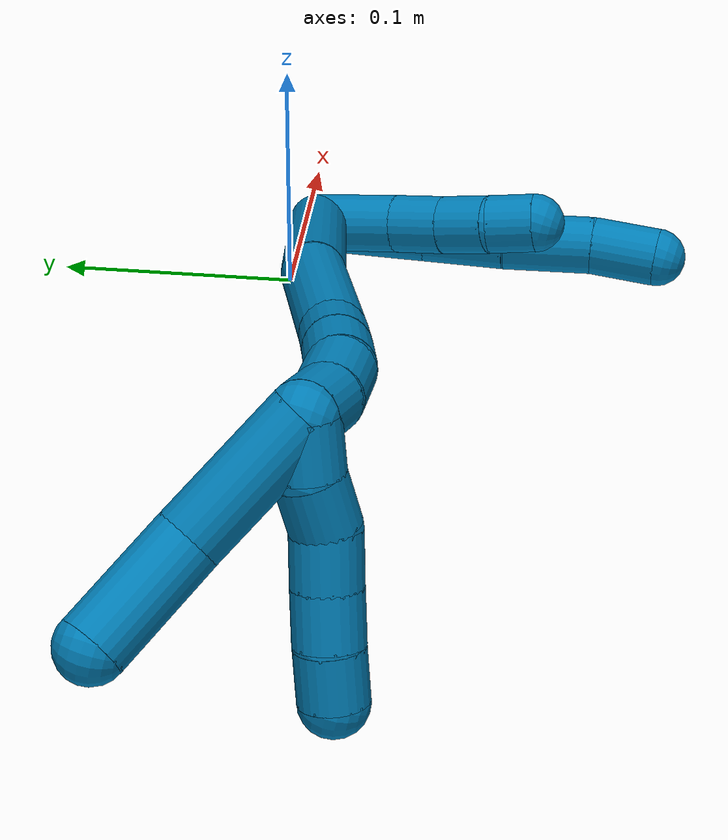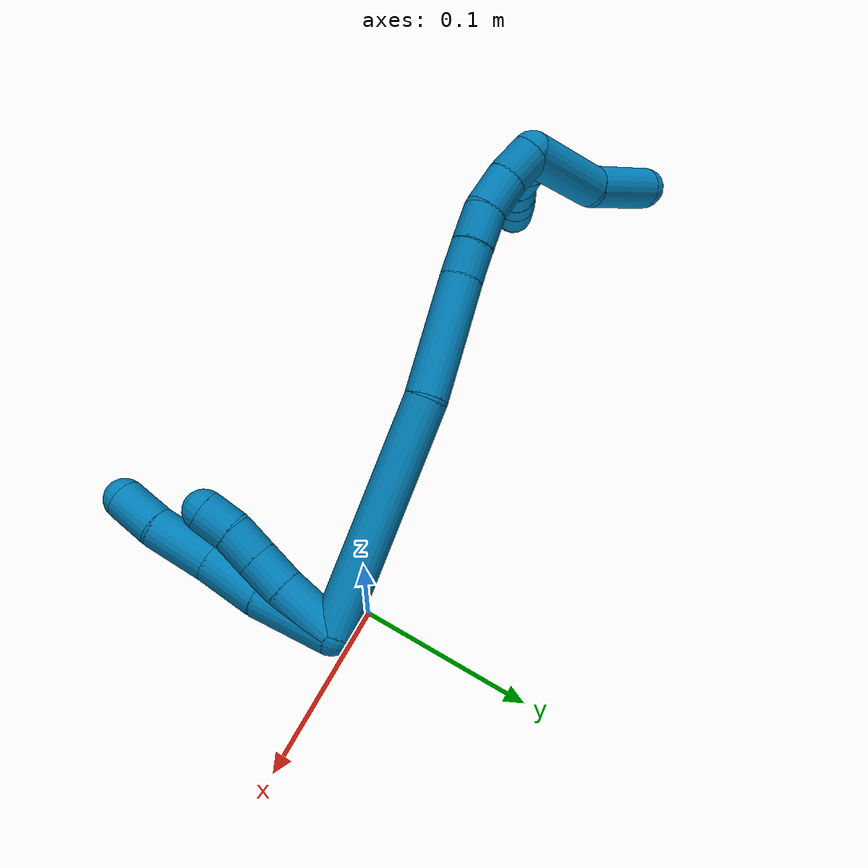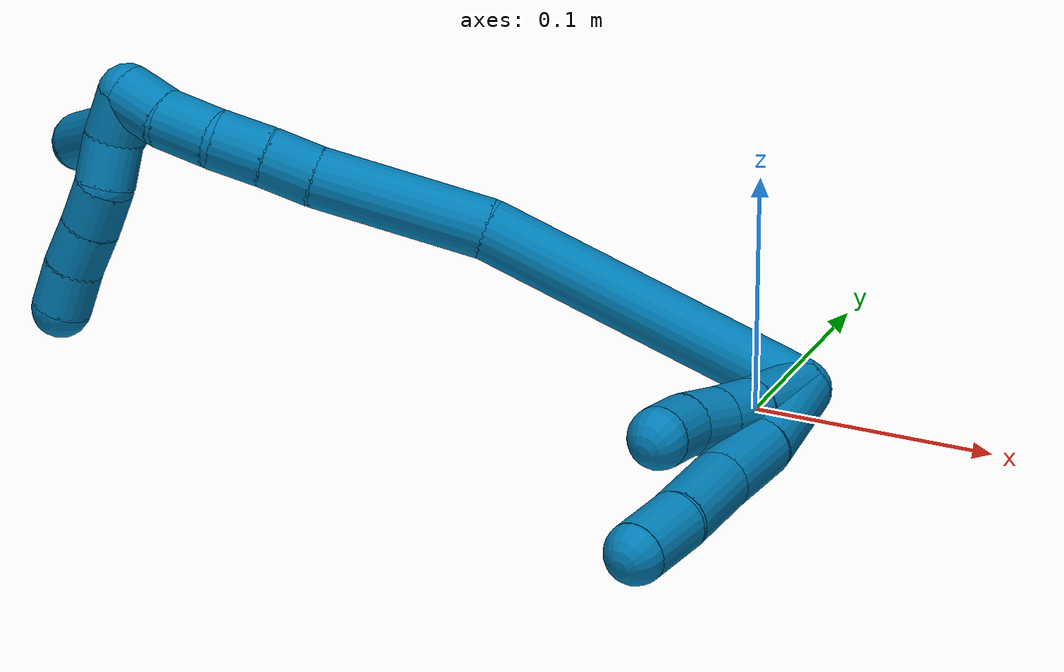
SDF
<sdf version="1.7">
 <world name="default">
  <model name="9">
   <static>0</static>
   <link name="9">
    <collision name="collision-cylinder-e_1_2_8">
     <pose>0.005737 0.000373 0.023066 -0.01615 0.243743 -0.001978</pose>
     <geometry><cylinder><radius>0.0125</radius><length>0.047544</length></cylinder></geometry>
     <surface>
      <friction><ode><mu>1.16</mu><mu2>1.16</mu2><slip1>0</slip1><slip2>0</slip2></ode></friction>
      <contact><ode><kp>1e+06</kp><kd>1</kd><max_vel>0</max_vel><min_depth>0.001</min_depth></ode></contact>
     </surface>
    </collision>
    <visual name="visual-cylinder-e_1_2_8">
     <pose>0.005737 0.000373 0.023066 -0.01615 0.243743 -0.001978</pose>
     <geometry><cylinder><radius>0.0125</radius><length>0.047544</length></cylinder></geometry>
     <material><ambient>0 0.490196 0.709804 1</ambient></material>
    </visual>
    <collision name="collision-cylinder-e_2_8_9">
     <pose>0.014166 0.003258 0.063463 -0.143989 0.152526 -0.011021</pose>
     <geometry><cylinder><radius>0.0125</radius><length>0.035435</length></cylinder></geometry>
     <surface>
      <friction><ode><mu>1.16</mu><mu2>1.16</mu2><slip1>0</slip1><slip2>0</slip2></ode></friction>
      <contact><ode><kp>1e+06</kp><kd>1</kd><max_vel>0</max_vel><min_depth>0.001</min_depth></ode></contact>
     </surface>
    </collision>
    <visual name="visual-cylinder-e_2_8_9">
     <pose>0.014166 0.003258 0.063463 -0.143989 0.152526 -0.011021</pose>
     <geometry><cylinder><radius>0.0125</radius><length>0.035435</length></cylinder></geometry>
     <material><ambient>0 0.490196 0.709804 1</ambient></material>
    </visual>
    <collision name="collision-cylinder-e_3_9_10">
     <pose>0.020955 0.008379 0.099503 -0.138513 0.213581 -0.014872</pose>
     <geometry><cylinder><radius>0.0125</radius><length>0.038659</length></cylinder></geometry>
     <surface>
      <friction><ode><mu>1.16</mu><mu2>1.16</mu2><slip1>0</slip1><slip2>0</slip2></ode></friction>
      <contact><ode><kp>1e+06</kp><kd>1</kd><max_vel>0</max_vel><min_depth>0.001</min_depth></ode></contact>
     </surface>
    </collision>
    <visual name="visual-cylinder-e_3_9_10">
     <pose>0.020955 0.008379 0.099503 -0.138513 0.213581 -0.014872</pose>
     <geometry><cylinder><radius>0.0125</radius><length>0.038659</length></cylinder></geometry>
     <material><ambient>0 0.490196 0.709804 1</ambient></material>
    </visual>
    <collision name="collision-cylinder-e_4_10_6">
     <pose>0.025842 0.012832 0.132251 -0.130682 0.055753 -0.003649</pose>
     <geometry><cylinder><radius>0.0125</radius><length>0.028363</length></cylinder></geometry>
     <surface>
      <friction><ode><mu>1.16</mu><mu2>1.16</mu2><slip1>0</slip1><slip2>0</slip2></ode></friction>
      <contact><ode><kp>1e+06</kp><kd>1</kd><max_vel>0</max_vel><min_depth>0.001</min_depth></ode></contact>
     </surface>
    </collision>
    <visual name="visual-cylinder-e_4_10_6">
     <pose>0.025842 0.012832 0.132251 -0.130682 0.055753 -0.003649</pose>
     <geometry><cylinder><radius>0.0125</radius><length>0.028363</length></cylinder></geometry>
     <material><ambient>0 0.490196 0.709804 1</ambient></material>
    </visual>
    <collision name="collision-cylinder-e_1_2_11">
     <pose>0.002067 0.005796 0.01731 -0.32311 0.112727 -0.018391</pose>
     <geometry><cylinder><radius>0.0125</radius><length>0.036742</length></cylinder></geometry>
     <surface>
      <friction><ode><mu>1.16</mu><mu2>1.16</mu2><slip1>0</slip1><slip2>0</slip2></ode></friction>
      <contact><ode><kp>1e+06</kp><kd>1</kd><max_vel>0</max_vel><min_depth>0.001</min_depth></ode></contact>
     </surface>
    </collision>
    <visual name="visual-cylinder-e_1_2_11">
     <pose>0.002067 0.005796 0.01731 -0.32311 0.112727 -0.018391</pose>
     <geometry><cylinder><radius>0.0125</radius><length>0.036742</length></cylinder></geometry>
     <material><ambient>0 0.490196 0.709804 1</ambient></material>
    </visual>
    <collision name="collision-cylinder-e_2_11_12">
     <pose>0.004646 0.015744 0.04492 -0.383156 0.046122 -0.008947</pose>
     <geometry><cylinder><radius>0.0125</radius><length>0.022234</length></cylinder></geometry>
     <surface>
      <friction><ode><mu>1.16</mu><mu2>1.16</mu2><slip1>0</slip1><slip2>0</slip2></ode></friction>
      <contact><ode><kp>1e+06</kp><kd>1</kd><max_vel>0</max_vel><min_depth>0.001</min_depth></ode></contact>
     </surface>
    </collision>
    <visual name="visual-cylinder-e_2_11_12">
     <pose>0.004646 0.015744 0.04492 -0.383156 0.046122 -0.008947</pose>
     <geometry><cylinder><radius>0.0125</radius><length>0.022234</length></cylinder></geometry>
     <material><ambient>0 0.490196 0.709804 1</ambient></material>
    </visual>
    <collision name="collision-cylinder-e_3_12_13">
     <pose>0.005858 0.024174 0.064714 -0.423408 0.067091 -0.014425</pose>
     <geometry><cylinder><radius>0.0125</radius><length>0.020876</length></cylinder></geometry>
     <surface>
      <friction><ode><mu>1.16</mu><mu2>1.16</mu2><slip1>0</slip1><slip2>0</slip2></ode></friction>
      <contact><ode><kp>1e+06</kp><kd>1</kd><max_vel>0</max_vel><min_depth>0.001</min_depth></ode></contact>
     </surface>
    </collision>
    <visual name="visual-cylinder-e_3_12_13">
     <pose>0.005858 0.024174 0.064714 -0.423408 0.067091 -0.014425</pose>
     <geometry><cylinder><radius>0.0125</radius><length>0.020876</length></cylinder></geometry>
     <material><ambient>0 0.490196 0.709804 1</ambient></material>
    </visual>
    <collision name="collision-cylinder-e_4_13_5">
     <pose>0.008627 0.031234 0.083668 -0.285942 0.206849 -0.029881</pose>
     <geometry><cylinder><radius>0.0125</radius><length>0.020148</length></cylinder></geometry>
     <surface>
      <friction><ode><mu>1.16</mu><mu2>1.16</mu2><slip1>0</slip1><slip2>0</slip2></ode></friction>
      <contact><ode><kp>1e+06</kp><kd>1</kd><max_vel>0</max_vel><min_depth>0.001</min_depth></ode></contact>
     </surface>
    </collision>
    <visual name="visual-cylinder-e_4_13_5">
     <pose>0.008627 0.031234 0.083668 -0.285942 0.206849 -0.029881</pose>
     <geometry><cylinder><radius>0.0125</radius><length>0.020148</length></cylinder></geometry>
     <material><ambient>0 0.490196 0.709804 1</ambient></material>
    </visual>
    <collision name="collision-cylinder-e_1_2_14">
     <pose>-0.046201 0.050707 0.012803 -1.32347 -0.723568 0.573292</pose>
     <geometry><cylinder><radius>0.0125</radius><length>0.139566</length></cylinder></geometry>
     <surface>
      <friction><ode><mu>1.16</mu><mu2>1.16</mu2><slip1>0</slip1><slip2>0</slip2></ode></friction>
      <contact><ode><kp>1e+06</kp><kd>1</kd><max_vel>0</max_vel><min_depth>0.001</min_depth></ode></contact>
     </surface>
    </collision>
    <visual name="visual-cylinder-e_1_2_14">
     <pose>-0.046201 0.050707 0.012803 -1.32347 -0.723568 0.573292</pose>
     <geometry><cylinder><radius>0.0125</radius><length>0.139566</length></cylinder></geometry>
     <material><ambient>0 0.490196 0.709804 1</ambient></material>
    </visual>
    <collision name="collision-cylinder-e_2_14_15">
     <pose>-0.117896 0.123979 0.037347 -1.09103 -0.786551 0.493375</pose>
     <geometry><cylinder><radius>0.0125</radius><length>0.072027</length></cylinder></geometry>
     <surface>
      <friction><ode><mu>1.16</mu><mu2>1.16</mu2><slip1>0</slip1><slip2>0</slip2></ode></friction>
      <contact><ode><kp>1e+06</kp><kd>1</kd><max_vel>0</max_vel><min_depth>0.001</min_depth></ode></contact>
     </surface>
    </collision>
    <visual name="visual-cylinder-e_2_14_15">
     <pose>-0.117896 0.123979 0.037347 -1.09103 -0.786551 0.493375</pose>
     <geometry><cylinder><radius>0.0125</radius><length>0.072027</length></cylinder></geometry>
     <material><ambient>0 0.490196 0.709804 1</ambient></material>
    </visual>
    <collision name="collision-cylinder-e_3_15_16">
     <pose>-0.150607 0.153748 0.051913 -1.1971 -0.750422 0.524856</pose>
     <geometry><cylinder><radius>0.0125</radius><length>0.021163</length></cylinder></geometry>
     <surface>
      <friction><ode><mu>1.16</mu><mu2>1.16</mu2><slip1>0</slip1><slip2>0</slip2></ode></friction>
      <contact><ode><kp>1e+06</kp><kd>1</kd><max_vel>0</max_vel><min_depth>0.001</min_depth></ode></contact>
     </surface>
    </collision>
    <visual name="visual-cylinder-e_3_15_16">
     <pose>-0.150607 0.153748 0.051913 -1.1971 -0.750422 0.524856</pose>
     <geometry><cylinder><radius>0.0125</radius><length>0.021163</length></cylinder></geometry>
     <material><ambient>0 0.490196 0.709804 1</ambient></material>
    </visual>
    <collision name="collision-cylinder-e_4_16_17">
     <pose>-0.165757 0.168013 0.057727 -1.17037 -0.802582 0.548153</pose>
     <geometry><cylinder><radius>0.0125</radius><length>0.022066</length></cylinder></geometry>
     <surface>
      <friction><ode><mu>1.16</mu><mu2>1.16</mu2><slip1>0</slip1><slip2>0</slip2></ode></friction>
      <contact><ode><kp>1e+06</kp><kd>1</kd><max_vel>0</max_vel><min_depth>0.001</min_depth></ode></contact>
     </surface>
    </collision>
    <visual name="visual-cylinder-e_4_16_17">
     <pose>-0.165757 0.168013 0.057727 -1.17037 -0.802582 0.548153</pose>
     <geometry><cylinder><radius>0.0125</radius><length>0.022066</length></cylinder></geometry>
     <material><ambient>0 0.490196 0.709804 1</ambient></material>
    </visual>
    <collision name="collision-cylinder-e_5_17_18">
     <pose>-0.183632 0.181811 0.061483 -1.45731 -0.972128 0.881249</pose>
     <geometry><cylinder><radius>0.0125</radius><length>0.024067</length></cylinder></geometry>
     <surface>
      <friction><ode><mu>1.16</mu><mu2>1.16</mu2><slip1>0</slip1><slip2>0</slip2></ode></friction>
      <contact><ode><kp>1e+06</kp><kd>1</kd><max_vel>0</max_vel><min_depth>0.001</min_depth></ode></contact>
     </surface>
    </collision>
    <visual name="visual-cylinder-e_5_17_18">
     <pose>-0.183632 0.181811 0.061483 -1.45731 -0.972128 0.881249</pose>
     <geometry><cylinder><radius>0.0125</radius><length>0.024067</length></cylinder></geometry>
     <material><ambient>0 0.490196 0.709804 1</ambient></material>
    </visual>
    <collision name="collision-cylinder-e_6_18_1">
     <pose>-0.201932 0.194829 0.060798 -1.7982 -0.913852 1.10765</pose>
     <geometry><cylinder><radius>0.0125</radius><length>0.021111</length></cylinder></geometry>
     <surface>
      <friction><ode><mu>1.16</mu><mu2>1.16</mu2><slip1>0</slip1><slip2>0</slip2></ode></friction>
      <contact><ode><kp>1e+06</kp><kd>1</kd><max_vel>0</max_vel><min_depth>0.001</min_depth></ode></contact>
     </surface>
    </collision>
    <visual name="visual-cylinder-e_6_18_1">
     <pose>-0.201932 0.194829 0.060798 -1.7982 -0.913852 1.10765</pose>
     <geometry><cylinder><radius>0.0125</radius><length>0.021111</length></cylinder></geometry>
     <material><ambient>0 0.490196 0.709804 1</ambient></material>
    </visual>
    <collision name="collision-cylinder-e_1_1_19">
     <pose>-0.21624 0.19384 0.062774 1.13002 -0.637207 -0.412267</pose>
     <geometry><cylinder><radius>0.0125</radius><length>0.02</length></cylinder></geometry>
     <surface>
      <friction><ode><mu>1.16</mu><mu2>1.16</mu2><slip1>0</slip1><slip2>0</slip2></ode></friction>
      <contact><ode><kp>1e+06</kp><kd>1</kd><max_vel>0</max_vel><min_depth>0.001</min_depth></ode></contact>
     </surface>
    </collision>
    <visual name="visual-cylinder-e_1_1_19">
     <pose>-0.21624 0.19384 0.062774 1.13002 -0.637207 -0.412267</pose>
     <geometry><cylinder><radius>0.0125</radius><length>0.02</length></cylinder></geometry>
     <material><ambient>0 0.490196 0.709804 1</ambient></material>
    </visual>
    <collision name="collision-cylinder-e_2_19_20">
     <pose>-0.22604 0.178593 0.070843 1.04403 -0.395248 -0.229358</pose>
     <geometry><cylinder><radius>0.0125</radius><length>0.02</length></cylinder></geometry>
     <surface>
      <friction><ode><mu>1.16</mu><mu2>1.16</mu2><slip1>0</slip1><slip2>0</slip2></ode></friction>
      <contact><ode><kp>1e+06</kp><kd>1</kd><max_vel>0</max_vel><min_depth>0.001</min_depth></ode></contact>
     </surface>
    </collision>
    <visual name="visual-cylinder-e_2_19_20">
     <pose>-0.22604 0.178593 0.070843 1.04403 -0.395248 -0.229358</pose>
     <geometry><cylinder><radius>0.0125</radius><length>0.02</length></cylinder></geometry>
     <material><ambient>0 0.490196 0.709804 1</ambient></material>
    </visual>
    <collision name="collision-cylinder-e_3_20_21">
     <pose>-0.236355 0.163545 0.078351 1.1853 -0.702922 -0.484167</pose>
     <geometry><cylinder><radius>0.0125</radius><length>0.02</length></cylinder></geometry>
     <surface>
      <friction><ode><mu>1.16</mu><mu2>1.16</mu2><slip1>0</slip1><slip2>0</slip2></ode></friction>
      <contact><ode><kp>1e+06</kp><kd>1</kd><max_vel>0</max_vel><min_depth>0.001</min_depth></ode></contact>
     </surface>
    </collision>
    <visual name="visual-cylinder-e_3_20_21">
     <pose>-0.236355 0.163545 0.078351 1.1853 -0.702922 -0.484167</pose>
     <geometry><cylinder><radius>0.0125</radius><length>0.02</length></cylinder></geometry>
     <material><ambient>0 0.490196 0.709804 1</ambient></material>
    </visual>
    <collision name="collision-cylinder-e_4_21_22">
     <pose>-0.249536 0.149754 0.084335 1.1369 -0.736538 -0.483346</pose>
     <geometry><cylinder><radius>0.0125</radius><length>0.02</length></cylinder></geometry>
     <surface>
      <friction><ode><mu>1.16</mu><mu2>1.16</mu2><slip1>0</slip1><slip2>0</slip2></ode></friction>
      <contact><ode><kp>1e+06</kp><kd>1</kd><max_vel>0</max_vel><min_depth>0.001</min_depth></ode></contact>
     </surface>
    </collision>
    <visual name="visual-cylinder-e_4_21_22">
     <pose>-0.249536 0.149754 0.084335 1.1369 -0.736538 -0.483346</pose>
     <geometry><cylinder><radius>0.0125</radius><length>0.02</length></cylinder></geometry>
     <material><ambient>0 0.490196 0.709804 1</ambient></material>
    </visual>
    <collision name="collision-cylinder-e_5_22_4">
     <pose>-0.26214 0.135637 0.090714 1.1551 -0.629368 -0.418043</pose>
     <geometry><cylinder><radius>0.0125</radius><length>0.02</length></cylinder></geometry>
     <surface>
      <friction><ode><mu>1.16</mu><mu2>1.16</mu2><slip1>0</slip1><slip2>0</slip2></ode></friction>
      <contact><ode><kp>1e+06</kp><kd>1</kd><max_vel>0</max_vel><min_depth>0.001</min_depth></ode></contact>
     </surface>
    </collision>
    <visual name="visual-cylinder-e_5_22_4">
     <pose>-0.26214 0.135637 0.090714 1.1551 -0.629368 -0.418043</pose>
     <geometry><cylinder><radius>0.0125</radius><length>0.02</length></cylinder></geometry>
     <material><ambient>0 0.490196 0.709804 1</ambient></material>
    </visual>
    <collision name="collision-cylinder-e_1_1_23">
     <pose>-0.231398 0.188866 0.047835 2.32533 -0.898441 -1.67935</pose>
     <geometry><cylinder><radius>0.0125</radius><length>0.05396</length></cylinder></geometry>
     <surface>
      <friction><ode><mu>1.16</mu><mu2>1.16</mu2><slip1>0</slip1><slip2>0</slip2></ode></friction>
      <contact><ode><kp>1e+06</kp><kd>1</kd><max_vel>0</max_vel><min_depth>0.001</min_depth></ode></contact>
     </surface>
    </collision>
    <visual name="visual-cylinder-e_1_1_23">
     <pose>-0.231398 0.188866 0.047835 2.32533 -0.898441 -1.67935</pose>
     <geometry><cylinder><radius>0.0125</radius><length>0.05396</length></cylinder></geometry>
     <material><ambient>0 0.490196 0.709804 1</ambient></material>
    </visual>
    <collision name="collision-cylinder-e_2_23_3">
     <pose>-0.273805 0.173023 0.028367 2.71672 -1.18163 -2.51934</pose>
     <geometry><cylinder><radius>0.0125</radius><length>0.04604</length></cylinder></geometry>
     <surface>
      <friction><ode><mu>1.16</mu><mu2>1.16</mu2><slip1>0</slip1><slip2>0</slip2></ode></friction>
      <contact><ode><kp>1e+06</kp><kd>1</kd><max_vel>0</max_vel><min_depth>0.001</min_depth></ode></contact>
     </surface>
    </collision>
    <visual name="visual-cylinder-e_2_23_3">
     <pose>-0.273805 0.173023 0.028367 2.71672 -1.18163 -2.51934</pose>
     <geometry><cylinder><radius>0.0125</radius><length>0.04604</length></cylinder></geometry>
     <material><ambient>0 0.490196 0.709804 1</ambient></material>
    </visual>
    <collision name="collision-sphere-3">
     <pose>-0.295104 0.169422 0.020409 0 -0 0</pose>
     <geometry><sphere><radius>0.0125</radius></sphere></geometry>
     <surface>
      <friction><ode><mu>1.16</mu><mu2>1.16</mu2><slip1>0</slip1><slip2>0</slip2></ode></friction>
      <contact><ode><kp>1e+06</kp><kd>1</kd><max_vel>0</max_vel><min_depth>0.001</min_depth></ode></contact>
     </surface>
    </collision>
    <visual name="visual-sphere-3">
     <pose>-0.295104 0.169422 0.020409 0 -0 0</pose>
     <geometry><sphere><radius>0.0125</radius></sphere></geometry>
     <material><ambient>0 0.490196 0.709804 1</ambient></material>
    </visual>
    <collision name="collision-sphere-23">
     <pose>-0.252507 0.176623 0.036325 0 -0 0</pose>
     <geometry><sphere><radius>0.0125</radius></sphere></geometry>
     <surface>
      <friction><ode><mu>1.16</mu><mu2>1.16</mu2><slip1>0</slip1><slip2>0</slip2></ode></friction>
      <contact><ode><kp>1e+06</kp><kd>1</kd><max_vel>0</max_vel><min_depth>0.001</min_depth></ode></contact>
     </surface>
    </collision>
    <visual name="visual-sphere-23">
     <pose>-0.252507 0.176623 0.036325 0 -0 0</pose>
     <geometry><sphere><radius>0.0125</radius></sphere></geometry>
     <material><ambient>0 0.490196 0.709804 1</ambient></material>
    </visual>
    <collision name="collision-sphere-4">
     <pose>-0.268026 0.128241 0.093978 0 -0 0</pose>
     <geometry><sphere><radius>0.0125</radius></sphere></geometry>
     <surface>
      <friction><ode><mu>1.16</mu><mu2>1.16</mu2><slip1>0</slip1><slip2>0</slip2></ode></friction>
      <contact><ode><kp>1e+06</kp><kd>1</kd><max_vel>0</max_vel><min_depth>0.001</min_depth></ode></contact>
     </surface>
    </collision>
    <visual name="visual-sphere-4">
     <pose>-0.268026 0.128241 0.093978 0 -0 0</pose>
     <geometry><sphere><radius>0.0125</radius></sphere></geometry>
     <material><ambient>0 0.490196 0.709804 1</ambient></material>
    </visual>
    <collision name="collision-sphere-22">
     <pose>-0.256254 0.143033 0.087449 0 -0 0</pose>
     <geometry><sphere><radius>0.0125</radius></sphere></geometry>
     <surface>
      <friction><ode><mu>1.16</mu><mu2>1.16</mu2><slip1>0</slip1><slip2>0</slip2></ode></friction>
      <contact><ode><kp>1e+06</kp><kd>1</kd><max_vel>0</max_vel><min_depth>0.001</min_depth></ode></contact>
     </surface>
    </collision>
    <visual name="visual-sphere-22">
     <pose>-0.256254 0.143033 0.087449 0 -0 0</pose>
     <geometry><sphere><radius>0.0125</radius></sphere></geometry>
     <material><ambient>0 0.490196 0.709804 1</ambient></material>
    </visual>
    <collision name="collision-sphere-21">
     <pose>-0.242819 0.156476 0.08122 0 -0 0</pose>
     <geometry><sphere><radius>0.0125</radius></sphere></geometry>
     <surface>
      <friction><ode><mu>1.16</mu><mu2>1.16</mu2><slip1>0</slip1><slip2>0</slip2></ode></friction>
      <contact><ode><kp>1e+06</kp><kd>1</kd><max_vel>0</max_vel><min_depth>0.001</min_depth></ode></contact>
     </surface>
    </collision>
    <visual name="visual-sphere-21">
     <pose>-0.242819 0.156476 0.08122 0 -0 0</pose>
     <geometry><sphere><radius>0.0125</radius></sphere></geometry>
     <material><ambient>0 0.490196 0.709804 1</ambient></material>
    </visual>
    <collision name="collision-sphere-20">
     <pose>-0.22989 0.170615 0.075483 0 -0 0</pose>
     <geometry><sphere><radius>0.0125</radius></sphere></geometry>
     <surface>
      <friction><ode><mu>1.16</mu><mu2>1.16</mu2><slip1>0</slip1><slip2>0</slip2></ode></friction>
      <contact><ode><kp>1e+06</kp><kd>1</kd><max_vel>0</max_vel><min_depth>0.001</min_depth></ode></contact>
     </surface>
    </collision>
    <visual name="visual-sphere-20">
     <pose>-0.22989 0.170615 0.075483 0 -0 0</pose>
     <geometry><sphere><radius>0.0125</radius></sphere></geometry>
     <material><ambient>0 0.490196 0.709804 1</ambient></material>
    </visual>
    <collision name="collision-sphere-11">
     <pose>0.004133 0.011592 0.03462 0 -0 0</pose>
     <geometry><sphere><radius>0.0125</radius></sphere></geometry>
     <surface>
      <friction><ode><mu>1.16</mu><mu2>1.16</mu2><slip1>0</slip1><slip2>0</slip2></ode></friction>
      <contact><ode><kp>1e+06</kp><kd>1</kd><max_vel>0</max_vel><min_depth>0.001</min_depth></ode></contact>
     </surface>
    </collision>
    <visual name="visual-sphere-11">
     <pose>0.004133 0.011592 0.03462 0 -0 0</pose>
     <geometry><sphere><radius>0.0125</radius></sphere></geometry>
     <material><ambient>0 0.490196 0.709804 1</ambient></material>
    </visual>
    <collision name="collision-sphere-6">
     <pose>0.026633 0.014677 0.146289 0 -0 0</pose>
     <geometry><sphere><radius>0.0125</radius></sphere></geometry>
     <surface>
      <friction><ode><mu>1.16</mu><mu2>1.16</mu2><slip1>0</slip1><slip2>0</slip2></ode></friction>
      <contact><ode><kp>1e+06</kp><kd>1</kd><max_vel>0</max_vel><min_depth>0.001</min_depth></ode></contact>
     </surface>
    </collision>
    <visual name="visual-sphere-6">
     <pose>0.026633 0.014677 0.146289 0 -0 0</pose>
     <geometry><sphere><radius>0.0125</radius></sphere></geometry>
     <material><ambient>0 0.490196 0.709804 1</ambient></material>
    </visual>
    <collision name="collision-sphere-10">
     <pose>0.025052 0.010987 0.118212 0 -0 0</pose>
     <geometry><sphere><radius>0.0125</radius></sphere></geometry>
     <surface>
      <friction><ode><mu>1.16</mu><mu2>1.16</mu2><slip1>0</slip1><slip2>0</slip2></ode></friction>
      <contact><ode><kp>1e+06</kp><kd>1</kd><max_vel>0</max_vel><min_depth>0.001</min_depth></ode></contact>
     </surface>
    </collision>
    <visual name="visual-sphere-10">
     <pose>0.025052 0.010987 0.118212 0 -0 0</pose>
     <geometry><sphere><radius>0.0125</radius></sphere></geometry>
     <material><ambient>0 0.490196 0.709804 1</ambient></material>
    </visual>
    <collision name="collision-sphere-9">
     <pose>0.016858 0.005771 0.080794 0 -0 0</pose>
     <geometry><sphere><radius>0.0125</radius></sphere></geometry>
     <surface>
      <friction><ode><mu>1.16</mu><mu2>1.16</mu2><slip1>0</slip1><slip2>0</slip2></ode></friction>
      <contact><ode><kp>1e+06</kp><kd>1</kd><max_vel>0</max_vel><min_depth>0.001</min_depth></ode></contact>
     </surface>
    </collision>
    <visual name="visual-sphere-9">
     <pose>0.016858 0.005771 0.080794 0 -0 0</pose>
     <geometry><sphere><radius>0.0125</radius></sphere></geometry>
     <material><ambient>0 0.490196 0.709804 1</ambient></material>
    </visual>
    <collision name="collision-sphere-2">
     <geometry><sphere><radius>0.0125</radius></sphere></geometry>
     <surface>
      <friction><ode><mu>1.16</mu><mu2>1.16</mu2><slip1>0</slip1><slip2>0</slip2></ode></friction>
      <contact><ode><kp>1e+06</kp><kd>1</kd><max_vel>0</max_vel><min_depth>0.001</min_depth></ode></contact>
     </surface>
    </collision>
    <visual name="visual-sphere-2">
     <geometry><sphere><radius>0.0125</radius></sphere></geometry>
     <material><ambient>0 0.490196 0.709804 1</ambient></material>
    </visual>
    <collision name="collision-sphere-19">
     <pose>-0.222189 0.186571 0.066203 0 -0 0</pose>
     <geometry><sphere><radius>0.0125</radius></sphere></geometry>
     <surface>
      <friction><ode><mu>1.16</mu><mu2>1.16</mu2><slip1>0</slip1><slip2>0</slip2></ode></friction>
      <contact><ode><kp>1e+06</kp><kd>1</kd><max_vel>0</max_vel><min_depth>0.001</min_depth></ode></contact>
     </surface>
    </collision>
    <visual name="visual-sphere-19">
     <pose>-0.222189 0.186571 0.066203 0 -0 0</pose>
     <geometry><sphere><radius>0.0125</radius></sphere></geometry>
     <material><ambient>0 0.490196 0.709804 1</ambient></material>
    </visual>
    <collision name="collision-sphere-8">
     <pose>0.011474 0.000745 0.046133 0 -0 0</pose>
     <geometry><sphere><radius>0.0125</radius></sphere></geometry>
     <surface>
      <friction><ode><mu>1.16</mu><mu2>1.16</mu2><slip1>0</slip1><slip2>0</slip2></ode></friction>
      <contact><ode><kp>1e+06</kp><kd>1</kd><max_vel>0</max_vel><min_depth>0.001</min_depth></ode></contact>
     </surface>
    </collision>
    <visual name="visual-sphere-8">
     <pose>0.011474 0.000745 0.046133 0 -0 0</pose>
     <geometry><sphere><radius>0.0125</radius></sphere></geometry>
     <material><ambient>0 0.490196 0.709804 1</ambient></material>
    </visual>
    <collision name="collision-sphere-12">
     <pose>0.005158 0.019895 0.055219 0 -0 0</pose>
     <geometry><sphere><radius>0.0125</radius></sphere></geometry>
     <surface>
      <friction><ode><mu>1.16</mu><mu2>1.16</mu2><slip1>0</slip1><slip2>0</slip2></ode></friction>
      <contact><ode><kp>1e+06</kp><kd>1</kd><max_vel>0</max_vel><min_depth>0.001</min_depth></ode></contact>
     </surface>
    </collision>
    <visual name="visual-sphere-12">
     <pose>0.005158 0.019895 0.055219 0 -0 0</pose>
     <geometry><sphere><radius>0.0125</radius></sphere></geometry>
     <material><ambient>0 0.490196 0.709804 1</ambient></material>
    </visual>
    <collision name="collision-sphere-13">
     <pose>0.006558 0.028453 0.074209 0 -0 0</pose>
     <geometry><sphere><radius>0.0125</radius></sphere></geometry>
     <surface>
      <friction><ode><mu>1.16</mu><mu2>1.16</mu2><slip1>0</slip1><slip2>0</slip2></ode></friction>
      <contact><ode><kp>1e+06</kp><kd>1</kd><max_vel>0</max_vel><min_depth>0.001</min_depth></ode></contact>
     </surface>
    </collision>
    <visual name="visual-sphere-13">
     <pose>0.006558 0.028453 0.074209 0 -0 0</pose>
     <geometry><sphere><radius>0.0125</radius></sphere></geometry>
     <material><ambient>0 0.490196 0.709804 1</ambient></material>
    </visual>
    <collision name="collision-sphere-5">
     <pose>0.010696 0.034015 0.093127 0 -0 0</pose>
     <geometry><sphere><radius>0.0125</radius></sphere></geometry>
     <surface>
      <friction><ode><mu>1.16</mu><mu2>1.16</mu2><slip1>0</slip1><slip2>0</slip2></ode></friction>
      <contact><ode><kp>1e+06</kp><kd>1</kd><max_vel>0</max_vel><min_depth>0.001</min_depth></ode></contact>
     </surface>
    </collision>
    <visual name="visual-sphere-5">
     <pose>0.010696 0.034015 0.093127 0 -0 0</pose>
     <geometry><sphere><radius>0.0125</radius></sphere></geometry>
     <material><ambient>0 0.490196 0.709804 1</ambient></material>
    </visual>
    <collision name="collision-sphere-14">
     <pose>-0.092401 0.101415 0.025607 0 -0 0</pose>
     <geometry><sphere><radius>0.0125</radius></sphere></geometry>
     <surface>
      <friction><ode><mu>1.16</mu><mu2>1.16</mu2><slip1>0</slip1><slip2>0</slip2></ode></friction>
      <contact><ode><kp>1e+06</kp><kd>1</kd><max_vel>0</max_vel><min_depth>0.001</min_depth></ode></contact>
     </surface>
    </collision>
    <visual name="visual-sphere-14">
     <pose>-0.092401 0.101415 0.025607 0 -0 0</pose>
     <geometry><sphere><radius>0.0125</radius></sphere></geometry>
     <material><ambient>0 0.490196 0.709804 1</ambient></material>
    </visual>
    <collision name="collision-sphere-15">
     <pose>-0.143391 0.146543 0.049088 0 -0 0</pose>
     <geometry><sphere><radius>0.0125</radius></sphere></geometry>
     <surface>
      <friction><ode><mu>1.16</mu><mu2>1.16</mu2><slip1>0</slip1><slip2>0</slip2></ode></friction>
      <contact><ode><kp>1e+06</kp><kd>1</kd><max_vel>0</max_vel><min_depth>0.001</min_depth></ode></contact>
     </surface>
    </collision>
    <visual name="visual-sphere-15">
     <pose>-0.143391 0.146543 0.049088 0 -0 0</pose>
     <geometry><sphere><radius>0.0125</radius></sphere></geometry>
     <material><ambient>0 0.490196 0.709804 1</ambient></material>
    </visual>
    <collision name="collision-sphere-16">
     <pose>-0.157823 0.160954 0.054738 0 -0 0</pose>
     <geometry><sphere><radius>0.0125</radius></sphere></geometry>
     <surface>
      <friction><ode><mu>1.16</mu><mu2>1.16</mu2><slip1>0</slip1><slip2>0</slip2></ode></friction>
      <contact><ode><kp>1e+06</kp><kd>1</kd><max_vel>0</max_vel><min_depth>0.001</min_depth></ode></contact>
     </surface>
    </collision>
    <visual name="visual-sphere-16">
     <pose>-0.157823 0.160954 0.054738 0 -0 0</pose>
     <geometry><sphere><radius>0.0125</radius></sphere></geometry>
     <material><ambient>0 0.490196 0.709804 1</ambient></material>
    </visual>
    <collision name="collision-sphere-17">
     <pose>-0.173692 0.175073 0.060715 0 -0 0</pose>
     <geometry><sphere><radius>0.0125</radius></sphere></geometry>
     <surface>
      <friction><ode><mu>1.16</mu><mu2>1.16</mu2><slip1>0</slip1><slip2>0</slip2></ode></friction>
      <contact><ode><kp>1e+06</kp><kd>1</kd><max_vel>0</max_vel><min_depth>0.001</min_depth></ode></contact>
     </surface>
    </collision>
    <visual name="visual-sphere-17">
     <pose>-0.173692 0.175073 0.060715 0 -0 0</pose>
     <geometry><sphere><radius>0.0125</radius></sphere></geometry>
     <material><ambient>0 0.490196 0.709804 1</ambient></material>
    </visual>
    <collision name="collision-sphere-18">
     <pose>-0.193573 0.188549 0.062251 0 -0 0</pose>
     <geometry><sphere><radius>0.0125</radius></sphere></geometry>
     <surface>
      <friction><ode><mu>1.16</mu><mu2>1.16</mu2><slip1>0</slip1><slip2>0</slip2></ode></friction>
      <contact><ode><kp>1e+06</kp><kd>1</kd><max_vel>0</max_vel><min_depth>0.001</min_depth></ode></contact>
     </surface>
    </collision>
    <visual name="visual-sphere-18">
     <pose>-0.193573 0.188549 0.062251 0 -0 0</pose>
     <geometry><sphere><radius>0.0125</radius></sphere></geometry>
     <material><ambient>0 0.490196 0.709804 1</ambient></material>
    </visual>
    <collision name="collision-sphere-1">
     <pose>-0.21029 0.201109 0.059345 0 -0 0</pose>
     <geometry><sphere><radius>0.0125</radius></sphere></geometry>
     <surface>
      <friction><ode><mu>1.16</mu><mu2>1.16</mu2><slip1>0</slip1><slip2>0</slip2></ode></friction>
      <contact><ode><kp>1e+06</kp><kd>1</kd><max_vel>0</max_vel><min_depth>0.001</min_depth></ode></contact>
     </surface>
    </collision>
    <visual name="visual-sphere-1">
     <pose>-0.21029 0.201109 0.059345 0 -0 0</pose>
     <geometry><sphere><radius>0.0125</radius></sphere></geometry>
     <material><ambient>0 0.490196 0.709804 1</ambient></material>
    </visual>
    <inertial>
     <pose>-0.102097 0.091412 0.04914 0 -0 0</pose>
     <mass>0.75</mass>
     <inertia>
      <ixx>0.000277</ixx>
      <ixy>0</ixy>
      <ixz>0</ixz>
      <iyy>0.000321</iyy>
      <iyz>0</iyz>
      <izz>3.9e-05</izz>
     </inertia>
    </inertial>
   </link>
   <pose>0.022749 -0.00955 0.017115 1.77885 -0.392995 -0.247346</pose>
  </model>
 </world>
</sdf>
